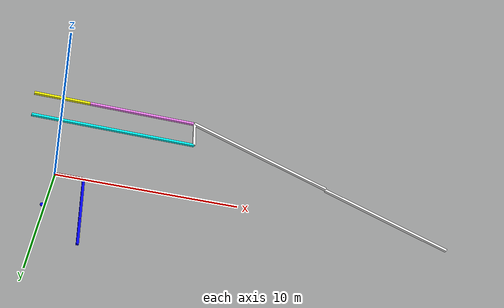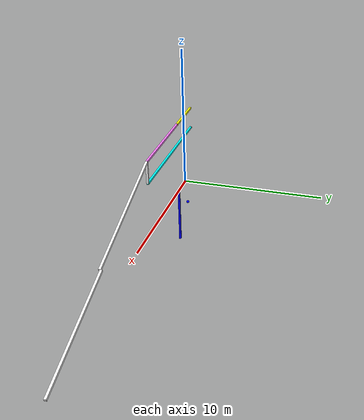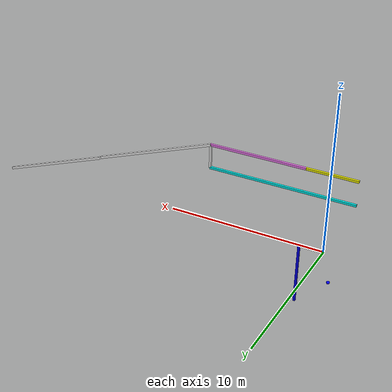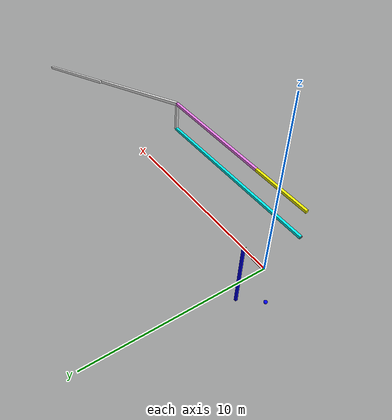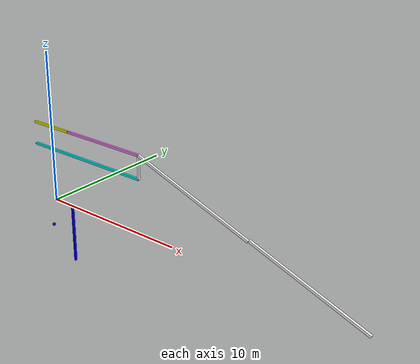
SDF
<sdf version="1.7">
    <model name="four_bar">
        <link name="A">
            <inertial>
                <pose>0.7625 0 0 0 0 0</pose>
                <mass>43.16116</mass>
                <inertia>
                    <ixx>0.1272462932066667</ixx>
                    <iyy>8.428345873686665</iyy>
                    <izz>8.428345873686665</izz>
                    <ixy>0</ixy>
                    <ixz>0</ixz>
                    <iyz>0</iyz>
                </inertia>
            </inertial>
            <visual name="A_visual">
                <pose>0.7625 0 0 0 0 0</pose>
                <geometry>
                    <box>
                        <size>1.525 0.133 0.133</size>
                    </box>
                </geometry>
                <material>
                    <diffuse>1 0 0 1</diffuse>
                </material>
            </visual>
            <visual name="A_pivot_visual">
                <pose>0 0 0 1.57079632679 0 0</pose>
                <geometry>
                    <cylinder>
                        <radius>0.01</radius>
                        <length>0.15</length>
                    </cylinder>
                </geometry>
                <material>
                    <diffuse>0 1 0 1</diffuse>
                </material>
            </visual>
        </link>
        <link name="B">
            <pose relative_to="A">1.525 0 0 0 1.5708 0</pose>
            <inertial>
                <pose>2.0125 0 0 0 0 0</pose>
                <mass>113.91716000000001</mass>
                <inertia>
                    <ixx>0.3358467738733334</ixx>
                    <iyy>153.96202257235336</iyy>
                    <izz>153.96202257235336</izz>
                    <ixy>0</ixy>
                    <ixz>0</ixz>
                    <iyz>0</iyz>
                </inertia>
            </inertial>
            <visual name="B_visual">
                <pose>2.0125 0 0 0 0 0</pose>
                <geometry>
                    <box>
                        <size>4.025 0.133 0.133</size>
                    </box>
                </geometry>
                <material>
                    <diffuse>0 0 1 1</diffuse>
                </material>
            </visual>
            <visual name="B_pivot_visual">
                <pose>0 -0.05 0 1.57079632679 0 0</pose>
                <geometry>
                    <cylinder>
                        <radius>0.01</radius>
                        <length>0.25</length>
                    </cylinder>
                </geometry>
                <material>
                    <diffuse>0 1 0 1</diffuse>
                </material>
            </visual>
            <visual name="CouplerPoint">
                <pose relative_to="B">2 0 -2 0 0 0</pose>
                <geometry>
                    <sphere>
                        <radius>0.1</radius>
                    </sphere>
                </geometry>
                <material>
                    <diffuse>0 0 1 1</diffuse>
                </material>
            </visual>
            <visual name="B_frame_anchor_visual">
                <pose relative_to="Bf_bushing">0 0 0 0 0 0</pose>
                <geometry>
                    <cylinder>
                        <radius>0.01</radius>
                        <length>0.2</length>
                    </cylinder>
                </geometry>
                <material>
                    <diffuse>1 0 0 1</diffuse>
                </material>
            </visual>
        </link>
        <link name="C">
            <pose>1.5004972495905828 0 5.127977866954097 0 3.14159 0</pose>
            <inertial>
                <pose>1.55185 0 0 0 0 0</pose>
                <mass>87.84215888</mass>
                <inertia>
                    <ixx>0.2589733247380534</ixx>
                    <iyy>70.64444070575755</iyy>
                    <izz>70.64444070575755</izz>
                    <ixy>0</ixy>
                    <ixz>0</ixz>
                    <iyz>0</iyz>
                </inertia>
            </inertial>
            <visual name="C_visual">
                <pose>1.55185 0 0 0 0 0</pose>
                <geometry>
                    <box>
                        <size>3.1037 0.133 0.133</size>
                    </box>
                </geometry>
                <material>
                    <diffuse>1 1 0 1</diffuse>
                </material>
            </visual>
            <visual name="C_pivot_visual">
                <pose>0 0 0 1.57079632679 0 0</pose>
                <geometry>
                    <cylinder>
                        <radius>0.01</radius>
                        <length>0.15</length>
                    </cylinder>
                </geometry>
                <material>
                    <diffuse>0 1 0 1</diffuse>
                </material>
            </visual>
        </link>
        <link name="D">
            <pose relative_to="C">0 0 0 0 0 0</pose>
            <inertial>
                <pose>-3.00175 0 0 0 0 0</pose>
                <mass>169.91345840000002</mass>
                <inertia>
                    <ixx>0.5009331942729335</ixx>
                    <iyy>510.5857123548586</iyy>
                    <izz>510.5857123548586</izz>
                    <ixy>0</ixy>
                    <ixz>0</ixz>
                    <iyz>0</iyz>
                </inertia>
            </inertial>
            <visual name="D_visual">
                <pose>-3.00175 0 0 0 0 0</pose>
                <geometry>
                    <box>
                        <size>6.0035 0.133 0.133</size>
                    </box>
                </geometry>
                <material>
                    <diffuse>1 .5 1 1</diffuse>
                </material>
            </visual>
            <visual name="D_pivot_visual">
                <pose>0 0 0 1.57079632679 0 0</pose>
                <geometry>
                    <cylinder>
                        <radius>0.01</radius>
                        <length>0.15</length>
                    </cylinder>
                </geometry>
                <material>
                    <diffuse>0 1 0 1</diffuse>
                </material>
            </visual>
        </link>
        <link name="E">
            <pose relative_to="D">-6.0035 0 0 0 1.5708 0</pose>
            <inertial>
                <pose>-0.75625 0 0 0 0 0</pose>
                <mass>42.80738</mass>
                <inertia>
                    <ixx>0.12620329080333337</ixx>
                    <iyy>8.223815845662083</iyy>
                    <izz>8.223815845662083</izz>
                    <ixy>0</ixy>
                    <ixz>0</ixz>
                    <iyz>0</iyz>
                </inertia>
            </inertial>
            <visual name="E_visual">
                <pose>-0.75625 0 0 0 0 0</pose>
                <geometry>
                    <box>
                        <size>1.5125 0.133 0.133</size>
                    </box>
                </geometry>
                <material>
                    <diffuse>1 1 1 1</diffuse>
                </material>
            </visual>
            <visual name="E_pivot_visual">
                <pose>0 0 0 1.57079632679 0 0</pose>
                <geometry>
                    <cylinder>
                        <radius>0.01</radius>
                        <length>0.15</length>
                    </cylinder>
                </geometry>
                <material>
                    <diffuse>0 1 0 1</diffuse>
                </material>
            </visual>
        </link>

        <link name="F">
            <pose relative_to="E">-1.5125 0 0 0 1.5708 0</pose>
            <inertial>
                <pose>-4.553599999999999 0 0 0 0 0</pose>
                <mass>257.75561728</mass>
                <inertia>
                    <ixx>0.7599065190109868</ixx>
                    <iyy>1781.9243136842028</iyy>
                    <izz>1781.9243136842028</izz>
                    <ixy>0</ixy>
                    <ixz>0</ixz>
                    <iyz>0</iyz>
                </inertia>
            </inertial>
            <visual name="F_visual">
                <pose>-4.553599999999999 0 0 0 0 0</pose>
                <geometry>
                    <box>
                        <size>9.107199999999999 0.133 0.133</size>
                    </box>
                </geometry>
                <material>
                    <diffuse>0 1 1 1</diffuse>
                </material>
            </visual>
            <visual name="F_pivot_visual">
                <pose>0 0 0 1.57079632679 0 0</pose>
                <geometry>
                    <cylinder>
                        <radius>0.01</radius>
                        <length>0.15</length>
                    </cylinder>
                </geometry>
                <material>
                    <diffuse>0 1 0 1</diffuse>
                </material>
            </visual>
            <visual name="F_frame_anchor_visual">
                <pose relative_to="Fb_bushing">0 0 0 0 0 0</pose>
                <geometry>
                    <cylinder>
                        <radius>0.01</radius>
                        <length>0.2</length>
                    </cylinder>
                </geometry>
                <material>
                    <diffuse>1 0 0 1</diffuse>
                </material>
            </visual>
        </link>
        <link name="G">
            <pose relative_to="E">0 0 0 0 1.91986 0</pose>
            <inertial>
                <pose>4.159 0 0 0 0 0</pose>
                <mass>2</mass>
                <inertia>
                    <ixx>0.08333333333333334</ixx>
                    <iyy>0.46666666666666</iyy>
                    <izz>0.416666666666668</izz>
                    <ixy>0</ixy>
                    <ixz>0</ixz>
                    <iyz>0</iyz>
                </inertia>
            </inertial>
            <visual name="G_visual">
                <pose>4.159 0 0 0 0 0</pose>
                <geometry>
                    <box>
                        <size>8.318 0.15 0.15</size>
                    </box>
                </geometry>
                <material>
                    <diffuse>1 1 1 1</diffuse>
                </material>
            </visual>
        </link>
        <link name="H">
            <pose relative_to="G">16.068 0 0 0 0 0</pose>
            <inertial>
                <pose>-3.875 0 0 0 0 0</pose>
                <mass>0.5</mass>
                <inertia>
                    <ixx>0.0008333333333333334</ixx>
                    <iyy>0.0046666666666666</iyy>
                    <izz>0.00416666666666668</izz>
                    <ixy>0</ixy>
                    <ixz>0</ixz>
                    <iyz>0</iyz>
                </inertia>
            </inertial>
            <visual name="H_visual">
                <pose>-3.875 0.1 0 0 0 0</pose>
                <geometry>
                    <box>
                        <size>7.75 0.15 0.15</size>
                    </box>
                </geometry>
                <material>
                    <diffuse>1 1 1 1</diffuse>
                </material>
            </visual>
        </link>
        <joint name="joint_GH" type="fixed">
            <parent>G</parent>
            <child>H</child>
            <axis>
                <xyz expressed_in="__model__">0 1 0</xyz>
                <limit>
                    <effort>0</effort>
                </limit>
                <dynamics>
                    <damping>10.0</damping>
                </dynamics>
            </axis>
        </joint>
        <joint name="joint_EF" type="revolute">
            <parent>E</parent>
            <child>F</child>
            <axis>
                <xyz expressed_in="__model__">0 1 0</xyz>
                <limit>
                    <effort>0</effort>
                </limit>
                <dynamics>
                    <damping>10.0</damping>
                </dynamics>
            </axis>
        </joint>
        <joint name="joint_DE" type="revolute">
            <parent>D</parent>
            <child>E</child>
            <axis>
                <xyz expressed_in="__model__">0 1 0</xyz>
                <limit>
                    <effort>0</effort>
                </limit>
                <dynamics>
                    <damping>10.0</damping>
                </dynamics>
            </axis>
        </joint>
        <joint name="joint_CD" type="fixed">
            <parent>C</parent>
            <child>D</child>
            <axis>
                <xyz expressed_in="__model__">0 1 0</xyz>
                <limit>
                    <effort>0</effort>
                </limit>
                <dynamics>
                    <damping>10.0</damping>
                </dynamics>
            </axis>
        </joint>
        <joint name="joint_EG" type="fixed">
            <parent>E</parent>
            <child>G</child>
            <axis>
                <xyz expressed_in="__model__">0 1 0</xyz>
                <limit>
                    <effort>0</effort>
                </limit>
                <dynamics>
                    <damping>10.0</damping>
                </dynamics>
            </axis>
        </joint>

        <joint name="joint_WA" type="revolute">
            <parent>world</parent>
            <child>A</child>
            <axis>
                <xyz expressed_in="__model__">0 1 0</xyz>
                <limit>
                </limit>
                <dynamics>
                    <damping>100.0</damping>
                </dynamics>
            </axis>
        </joint>
        <joint name="joint_AB" type="revolute">
            <parent>A</parent>
            <child>B</child>
            <axis>
                <xyz expressed_in="__model__">0 1 0</xyz>
                <limit>
                    <effort>0</effort>
                </limit>
                <dynamics>
                    <damping>10.0</damping>
                </dynamics>
            </axis>
        </joint>
        <joint name="joint_WC" type="revolute">
            <parent>world</parent>
            <child>C</child>
            <axis>
                <xyz expressed_in="__model__">0 1 0</xyz>
                <limit>
                    <upper>1.5708</upper>
                    <lower>-1.5708</lower>
                    <effort>0</effort>
                </limit>
                <dynamics>
                    <damping>10.0</damping>
                </dynamics>
            </axis>
        </joint>
        <frame name="Bf_bushing" attached_to="B">
            <pose relative_to="B">2.5125 0 0 -1.57079632679 0 0</pose>
        </frame>
        <frame name="Fb_bushing" attached_to="F">
            <pose relative_to="F">-9.107199999999999 0 0 -1.57079632679 0 0</pose>
        </frame>
        <frame name="Bc_bushing" attached_to="B">
            <pose relative_to="B">4.025 0 0 -1.57079632679 0 0</pose>
        </frame>
        <frame name="Cb_bushing" attached_to="C">
            <pose relative_to="C">3.1037 0 0 -1.57079632679 0 0</pose>
        </frame>
    </model>
</sdf>
